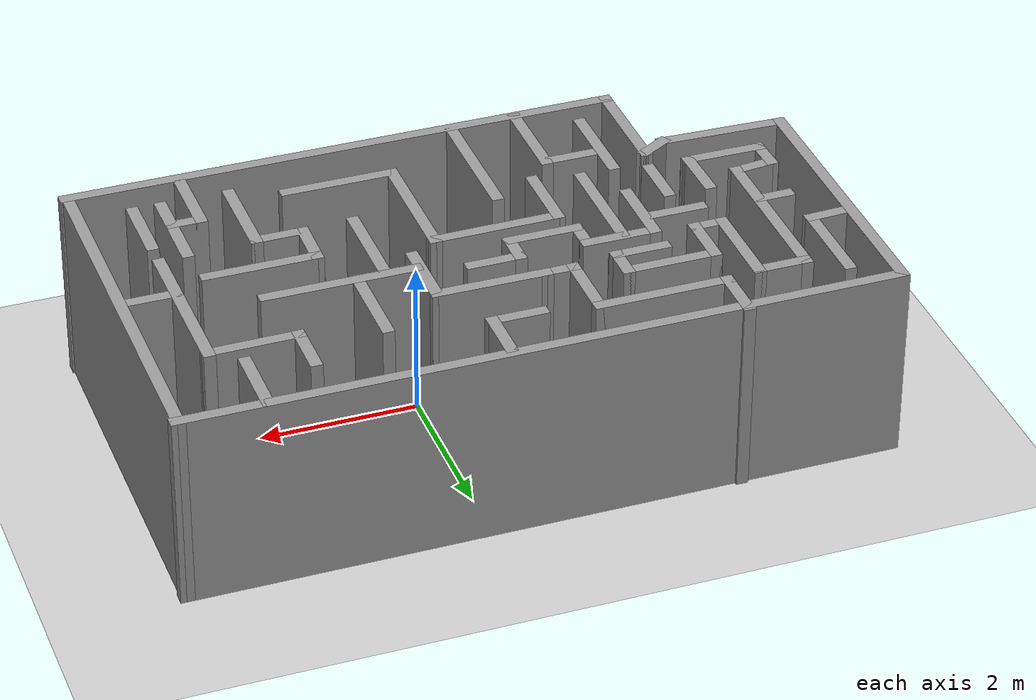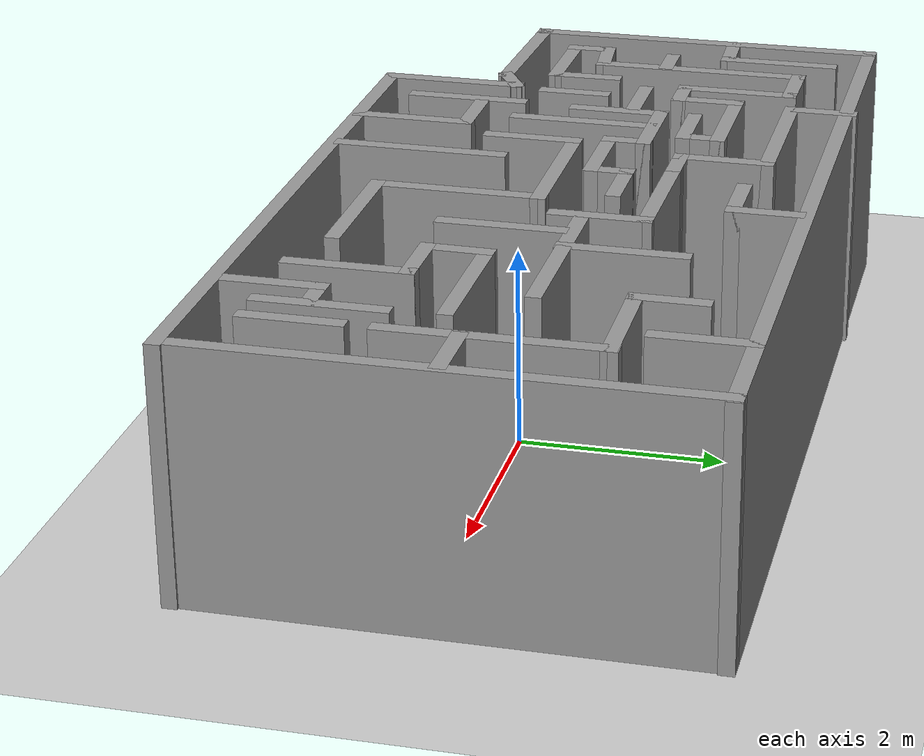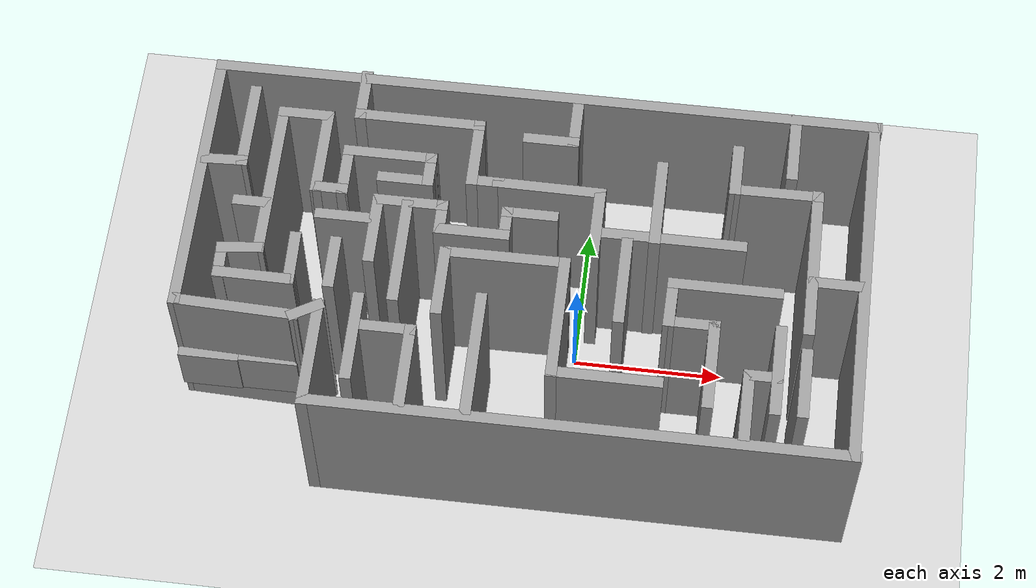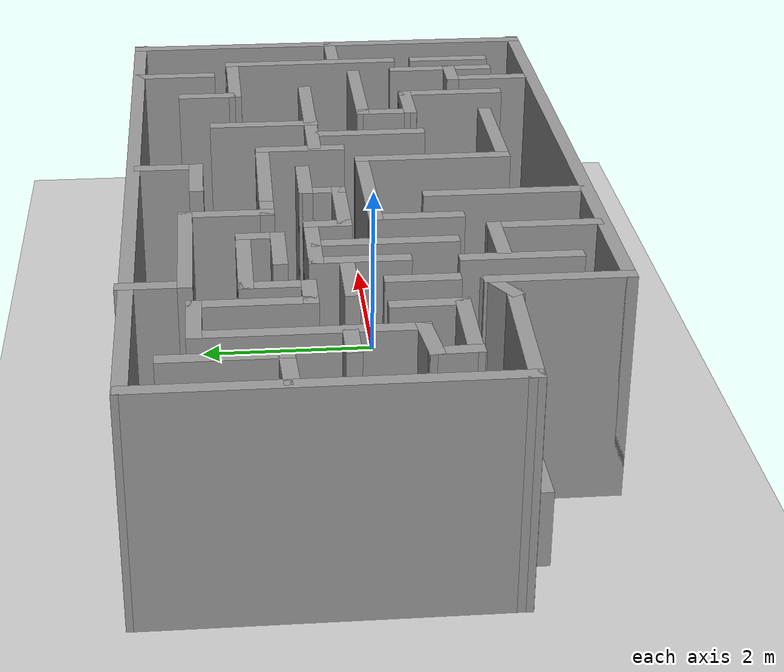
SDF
<sdf version="1.7">
 <world name="default">
  <light name="sun" type="directional">
   <pose>0 0 10 0 -0 0</pose>
   <diffuse>0.8 0.8 0.8 1</diffuse>
   <specular>0.2 0.2 0.2 1</specular>
   <attenuation>
    <range>1000</range>
    <constant>0.9</constant>
    <linear>0.01</linear>
    <quadratic>0.001</quadratic>
   </attenuation>
   <direction>-0.5 0.1 -0.9</direction>
   <spot><inner_angle>0</inner_angle><outer_angle>0</outer_angle><falloff>0</falloff></spot>
  </light>
  <model name="ground_plane">
   <static>1</static>
   <link name="link">
    <collision name="collision">
     <geometry><plane><normal>0 0 1</normal><size>100 100</size></plane></geometry>
     <surface>
      <contact><collide_bitmask>65535</collide_bitmask></contact>
      <friction><ode><mu>100</mu><mu2>50</mu2></ode></friction>
     </surface>
    </collision>
    <visual name="visual">
     <cast_shadows>0</cast_shadows>
     <geometry><plane><normal>0 0 1</normal><size>100 100</size></plane></geometry>
     <material>
      <script><uri>file://media/materials/scripts/gazebo.material</uri><name>Gazebo/Grey</name></script>
     </material>
    </visual>
   </link>
  </model>
  <gravity>0 0 -9.8</gravity>
  <magnetic_field>6e-06 2.3e-05 -4.2e-05</magnetic_field>
  <atmosphere type="adiabatic"/>
  <physics type="ode">
   <max_step_size>0.001</max_step_size>
   <real_time_factor>1</real_time_factor>
   <real_time_update_rate>1000</real_time_update_rate>
  </physics>
  <scene><ambient>0.4 0.4 0.4 1</ambient><background>0.7 0.7 0.7 1</background><shadows>1</shadows></scene>
  <spherical_coordinates>
   <surface_model>EARTH_WGS84</surface_model>
   <latitude_deg>0</latitude_deg>
   <longitude_deg>0</longitude_deg>
   <elevation>0</elevation>
   <heading_deg>0</heading_deg>
  </spherical_coordinates>
  <model name="luan">
   <pose>-0.698073 0.268581 0 0 -0 0</pose>
   <link name="Wall_0">
    <collision name="Wall_0_Collision">
     <geometry><box><size>3.75 0.15 2.5</size></box></geometry>
     <pose>0 0 1.25 0 -0 0</pose>
    </collision>
    <visual name="Wall_0_Visual">
     <pose>0 0 1.25 0 -0 0</pose>
     <geometry><box><size>3.75 0.15 2.5</size></box></geometry>
     <material>
      <script><uri>file://media/materials/scripts/gazebo.material</uri><name>Gazebo/Grey</name></script>
      <ambient>1 1 1 1</ambient>
     </material>
     <meta><layer>0</layer></meta>
    </visual>
    <pose>-4.40656 0.59 0 0 -0 1.5708</pose>
   </link>
   <link name="Wall_1">
    <collision name="Wall_1_Collision">
     <geometry><box><size>8.96566 0.15 2.5</size></box></geometry>
     <pose>0 0 1.25 0 -0 0</pose>
    </collision>
    <visual name="Wall_1_Visual">
     <pose>0 0 1.25 0 -0 0</pose>
     <geometry><box><size>8.96566 0.15 2.5</size></box></geometry>
     <material>
      <script><uri>file://media/materials/scripts/gazebo.material</uri><name>Gazebo/Grey</name></script>
      <ambient>1 1 1 1</ambient>
     </material>
     <meta><layer>0</layer></meta>
    </visual>
    <pose>0.001266 2.405 0 0 -0 0.001134</pose>
   </link>
   <link name="Wall_10">
    <collision name="Wall_10_Collision">
     <geometry><box><size>1.25 0.15 2.5</size></box></geometry>
     <pose>0 0 1.25 0 -0 0</pose>
    </collision>
    <visual name="Wall_10_Visual">
     <pose>0 0 1.25 0 -0 0</pose>
     <geometry><box><size>1.25 0.15 2.5</size></box></geometry>
     <material>
      <script><uri>file://media/materials/scripts/gazebo.material</uri><name>Gazebo/Grey</name></script>
      <ambient>1 1 1 1</ambient>
     </material>
     <meta><layer>0</layer></meta>
    </visual>
    <pose>-1.33656 -1.86 0 0 -0 -1.5708</pose>
   </link>
   <link name="Wall_100">
    <collision name="Wall_100_Collision">
     <geometry><box><size>0.75 0.15 2.5</size></box></geometry>
     <pose>0 0 1.25 0 -0 0</pose>
    </collision>
    <visual name="Wall_100_Visual">
     <pose>0 0 1.25 0 -0 0</pose>
     <geometry><box><size>0.75 0.15 2.5</size></box></geometry>
     <material>
      <script><uri>file://media/materials/scripts/gazebo.material</uri><name>Gazebo/Grey</name></script>
      <ambient>1 1 1 1</ambient>
     </material>
     <meta><layer>0</layer></meta>
    </visual>
    <pose>2.61344 1.54 0 0 -0 -1.5708</pose>
   </link>
   <link name="Wall_102">
    <collision name="Wall_102_Collision">
     <geometry><box><size>1 0.15 2.5</size></box></geometry>
     <pose>0 0 1.25 0 -0 0</pose>
    </collision>
    <visual name="Wall_102_Visual">
     <pose>0 0 1.25 0 -0 0</pose>
     <geometry><box><size>1 0.15 2.5</size></box></geometry>
     <material>
      <script><uri>file://media/materials/scripts/gazebo.material</uri><name>Gazebo/Grey</name></script>
      <ambient>1 1 1 1</ambient>
     </material>
     <meta><layer>0</layer></meta>
    </visual>
    <pose>3.34344 1.975 0 0 -0 1.5708</pose>
   </link>
   <link name="Wall_104">
    <collision name="Wall_104_Collision">
     <geometry><box><size>0.75 0.15 2.5</size></box></geometry>
     <pose>0 0 1.25 0 -0 0</pose>
    </collision>
    <visual name="Wall_104_Visual">
     <pose>0 0 1.25 0 -0 0</pose>
     <geometry><box><size>0.75 0.15 2.5</size></box></geometry>
     <material>
      <script><uri>file://media/materials/scripts/gazebo.material</uri><name>Gazebo/Grey</name></script>
      <ambient>1 1 1 1</ambient>
     </material>
     <meta><layer>0</layer></meta>
    </visual>
    <pose>0.433138 2.02104 0 0 -0 -1.5708</pose>
   </link>
   <link name="Wall_105">
    <collision name="Wall_105_Collision">
     <geometry><box><size>0.75 0.15 2.5</size></box></geometry>
     <pose>0 0 1.25 0 -0 0</pose>
    </collision>
    <visual name="Wall_105_Visual">
     <pose>0 0 1.25 0 -0 0</pose>
     <geometry><box><size>0.75 0.15 2.5</size></box></geometry>
     <material>
      <script><uri>file://media/materials/scripts/gazebo.material</uri><name>Gazebo/Grey</name></script>
      <ambient>1 1 1 1</ambient>
     </material>
     <meta><layer>0</layer></meta>
    </visual>
    <pose>0.133138 1.72104 0 0 -0 3.14159</pose>
   </link>
   <link name="Wall_107">
    <collision name="Wall_107_Collision">
     <geometry><box><size>1.25 0.15 2.5</size></box></geometry>
     <pose>0 0 1.25 0 -0 0</pose>
    </collision>
    <visual name="Wall_107_Visual">
     <pose>0 0 1.25 0 -0 0</pose>
     <geometry><box><size>1.25 0.15 2.5</size></box></geometry>
     <material>
      <script><uri>file://media/materials/scripts/gazebo.material</uri><name>Gazebo/Grey</name></script>
      <ambient>1 1 1 1</ambient>
     </material>
     <meta><layer>0</layer></meta>
    </visual>
    <pose>1.63593 0.928069 0 0 -0 1.5708</pose>
   </link>
   <link name="Wall_110">
    <collision name="Wall_110_Collision">
     <geometry><box><size>1.73479 0.15 2.5</size></box></geometry>
     <pose>0 0 1.25 0 -0 0</pose>
    </collision>
    <visual name="Wall_110_Visual">
     <pose>0 0 1.25 0 -0 0</pose>
     <geometry><box><size>1.73479 0.15 2.5</size></box></geometry>
     <material>
      <script><uri>file://media/materials/scripts/gazebo.material</uri><name>Gazebo/Grey</name></script>
      <ambient>1 1 1 1</ambient>
     </material>
     <meta><layer>0</layer></meta>
    </visual>
    <pose>0.51344 -0.902396 0 0 -0 -1.5708</pose>
   </link>
   <link name="Wall_116">
    <collision name="Wall_116_Collision">
     <geometry><box><size>1.75 0.15 2.5</size></box></geometry>
     <pose>0 0 1.25 0 -0 0</pose>
    </collision>
    <visual name="Wall_116_Visual">
     <pose>0 0 1.25 0 -0 0</pose>
     <geometry><box><size>1.75 0.15 2.5</size></box></geometry>
     <material>
      <script><uri>file://media/materials/scripts/gazebo.material</uri><name>Gazebo/Grey</name></script>
      <ambient>1 1 1 1</ambient>
     </material>
     <meta><layer>0</layer></meta>
    </visual>
    <pose>-0.495453 -1.54973 0 0 -0 1.5708</pose>
   </link>
   <link name="Wall_122">
    <collision name="Wall_122_Collision">
     <geometry><box><size>1.25 0.15 2.5</size></box></geometry>
     <pose>0 0 1.25 0 -0 0</pose>
    </collision>
    <visual name="Wall_122_Visual">
     <pose>0 0 1.25 0 -0 0</pose>
     <geometry><box><size>1.25 0.15 2.5</size></box></geometry>
     <material>
      <script><uri>file://media/materials/scripts/gazebo.material</uri><name>Gazebo/Grey</name></script>
      <ambient>1 1 1 1</ambient>
     </material>
     <meta><layer>0</layer></meta>
    </visual>
    <pose>1.28397 -0.278855 0 0 -0 1.5708</pose>
   </link>
   <link name="Wall_128">
    <collision name="Wall_128_Collision">
     <geometry><box><size>1.5 0.15 2.5</size></box></geometry>
     <pose>0 0 1.25 0 -0 0</pose>
    </collision>
    <visual name="Wall_128_Visual">
     <pose>0 0 1.25 0 -0 0</pose>
     <geometry><box><size>1.5 0.15 2.5</size></box></geometry>
     <material>
      <script><uri>file://media/materials/scripts/gazebo.material</uri><name>Gazebo/Grey</name></script>
      <ambient>1 1 1 1</ambient>
     </material>
     <meta><layer>0</layer></meta>
    </visual>
    <pose>1.18844 -1.69479 0 0 -0 0</pose>
   </link>
   <link name="Wall_134">
    <collision name="Wall_134_Collision">
     <geometry><box><size>1 0.15 2.5</size></box></geometry>
     <pose>0 0 1.25 0 -0 0</pose>
    </collision>
    <visual name="Wall_134_Visual">
     <pose>0 0 1.25 0 -0 0</pose>
     <geometry><box><size>1 0.15 2.5</size></box></geometry>
     <material>
      <script><uri>file://media/materials/scripts/gazebo.material</uri><name>Gazebo/Grey</name></script>
      <ambient>1 1 1 1</ambient>
     </material>
     <meta><layer>0</layer></meta>
    </visual>
    <pose>-0.74156 0.21 0 0 -0 0</pose>
   </link>
   <link name="Wall_135">
    <collision name="Wall_135_Collision">
     <geometry><box><size>0.5 0.15 2.5</size></box></geometry>
     <pose>0 0 1.25 0 -0 0</pose>
    </collision>
    <visual name="Wall_135_Visual">
     <pose>0 0 1.25 0 -0 0</pose>
     <geometry><box><size>0.5 0.15 2.5</size></box></geometry>
     <material>
      <script><uri>file://media/materials/scripts/gazebo.material</uri><name>Gazebo/Grey</name></script>
      <ambient>1 1 1 1</ambient>
     </material>
     <meta><layer>0</layer></meta>
    </visual>
    <pose>-0.31656 0.385 0 0 -0 1.5708</pose>
   </link>
   <link name="Wall_136">
    <collision name="Wall_136_Collision">
     <geometry><box><size>0.75 0.15 2.5</size></box></geometry>
     <pose>0 0 1.25 0 -0 0</pose>
    </collision>
    <visual name="Wall_136_Visual">
     <pose>0 0 1.25 0 -0 0</pose>
     <geometry><box><size>0.75 0.15 2.5</size></box></geometry>
     <material>
      <script><uri>file://media/materials/scripts/gazebo.material</uri><name>Gazebo/Grey</name></script>
      <ambient>1 1 1 1</ambient>
     </material>
     <meta><layer>0</layer></meta>
    </visual>
    <pose>-0.01656 0.56 0 0 -0 0</pose>
   </link>
   <link name="Wall_138">
    <collision name="Wall_138_Collision">
     <geometry><box><size>1 0.15 2.5</size></box></geometry>
     <pose>0 0 1.25 0 -0 0</pose>
    </collision>
    <visual name="Wall_138_Visual">
     <pose>0 0 1.25 0 -0 0</pose>
     <geometry><box><size>1 0.15 2.5</size></box></geometry>
     <material>
      <script><uri>file://media/materials/scripts/gazebo.material</uri><name>Gazebo/Grey</name></script>
      <ambient>1 1 1 1</ambient>
     </material>
     <meta><layer>0</layer></meta>
    </visual>
    <pose>0.86344 0.555 0 0 -0 -1.5708</pose>
   </link>
   <link name="Wall_14">
    <collision name="Wall_14_Collision">
     <geometry><box><size>1 0.15 2.5</size></box></geometry>
     <pose>0 0 1.25 0 -0 0</pose>
    </collision>
    <visual name="Wall_14_Visual">
     <pose>0 0 1.25 0 -0 0</pose>
     <geometry><box><size>1 0.15 2.5</size></box></geometry>
     <material>
      <script><uri>file://media/materials/scripts/gazebo.material</uri><name>Gazebo/Grey</name></script>
      <ambient>1 1 1 1</ambient>
     </material>
     <meta><layer>0</layer></meta>
    </visual>
    <pose>-1.04656 -0.545 0 0 -0 1.5708</pose>
   </link>
   <link name="Wall_15">
    <collision name="Wall_15_Collision">
     <geometry><box><size>1.71003 0.15 2.5</size></box></geometry>
     <pose>0 0 1.25 0 -0 0</pose>
    </collision>
    <visual name="Wall_15_Visual">
     <pose>0 0 1.25 0 -0 0</pose>
     <geometry><box><size>1.71003 0.15 2.5</size></box></geometry>
     <material>
      <script><uri>file://media/materials/scripts/gazebo.material</uri><name>Gazebo/Grey</name></script>
      <ambient>1 1 1 1</ambient>
     </material>
     <meta><layer>0</layer></meta>
    </visual>
    <pose>-0.26656 -0.115 0 0 -0 0.00641</pose>
   </link>
   <link name="Wall_18">
    <collision name="Wall_18_Collision">
     <geometry><box><size>1.50033 0.15 2.5</size></box></geometry>
     <pose>0 0 1.25 0 -0 0</pose>
    </collision>
    <visual name="Wall_18_Visual">
     <pose>0 0 1.25 0 -0 0</pose>
     <geometry><box><size>1.50033 0.15 2.5</size></box></geometry>
     <material>
      <script><uri>file://media/materials/scripts/gazebo.material</uri><name>Gazebo/Grey</name></script>
      <ambient>1 1 1 1</ambient>
     </material>
     <meta><layer>0</layer></meta>
    </visual>
    <pose>0.18844 0.985 0 0 -0 3.13418</pose>
   </link>
   <link name="Wall_19">
    <collision name="Wall_19_Collision">
     <geometry><box><size>0.5 0.15 2.5</size></box></geometry>
     <pose>0 0 1.25 0 -0 0</pose>
    </collision>
    <visual name="Wall_19_Visual">
     <pose>0 0 1.25 0 -0 0</pose>
     <geometry><box><size>0.5 0.15 2.5</size></box></geometry>
     <material>
      <script><uri>file://media/materials/scripts/gazebo.material</uri><name>Gazebo/Grey</name></script>
      <ambient>1 1 1 1</ambient>
     </material>
     <meta><layer>0</layer></meta>
    </visual>
    <pose>-0.66156 0.99 0 0 -0 3.14159</pose>
   </link>
   <link name="Wall_2">
    <collision name="Wall_2_Collision">
     <geometry><box><size>5 0.15 2.5</size></box></geometry>
     <pose>0 0 1.25 0 -0 0</pose>
    </collision>
    <visual name="Wall_2_Visual">
     <pose>0 0 1.25 0 -0 0</pose>
     <geometry><box><size>5 0.15 2.5</size></box></geometry>
     <material>
      <script><uri>file://media/materials/scripts/gazebo.material</uri><name>Gazebo/Grey</name></script>
      <ambient>1 1 1 1</ambient>
     </material>
     <meta><layer>0</layer></meta>
    </visual>
    <pose>4.38596 -0.015 0 0 -0 -1.5708</pose>
   </link>
   <link name="Wall_20">
    <collision name="Wall_20_Collision">
     <geometry><box><size>1 0.15 2.5</size></box></geometry>
     <pose>0 0 1.25 0 -0 0</pose>
    </collision>
    <visual name="Wall_20_Visual">
     <pose>0 0 1.25 0 -0 0</pose>
     <geometry><box><size>1 0.15 2.5</size></box></geometry>
     <material>
      <script><uri>file://media/materials/scripts/gazebo.material</uri><name>Gazebo/Grey</name></script>
      <ambient>1 1 1 1</ambient>
     </material>
     <meta><layer>0</layer></meta>
    </visual>
    <pose>-0.83656 1.415 0 0 -0 1.5708</pose>
   </link>
   <link name="Wall_21">
    <collision name="Wall_21_Collision">
     <geometry><box><size>1.75 0.15 2.5</size></box></geometry>
     <pose>0 0 1.25 0 -0 0</pose>
    </collision>
    <visual name="Wall_21_Visual">
     <pose>0 0 1.25 0 -0 0</pose>
     <geometry><box><size>1.75 0.15 2.5</size></box></geometry>
     <material>
      <script><uri>file://media/materials/scripts/gazebo.material</uri><name>Gazebo/Grey</name></script>
      <ambient>1 1 1 1</ambient>
     </material>
     <meta><layer>0</layer></meta>
    </visual>
    <pose>-1.63656 1.84 0 0 -0 3.14159</pose>
   </link>
   <link name="Wall_23">
    <collision name="Wall_23_Collision">
     <geometry><box><size>1.25 0.15 2.5</size></box></geometry>
     <pose>0 0 1.25 0 -0 0</pose>
    </collision>
    <visual name="Wall_23_Visual">
     <pose>0 0 1.25 0 -0 0</pose>
     <geometry><box><size>1.25 0.15 2.5</size></box></geometry>
     <material>
      <script><uri>file://media/materials/scripts/gazebo.material</uri><name>Gazebo/Grey</name></script>
      <ambient>1 1 1 1</ambient>
     </material>
     <meta><layer>0</layer></meta>
    </visual>
    <pose>-2.06404 -1.4747 0 0 -0 -1.5708</pose>
   </link>
   <link name="Wall_26">
    <collision name="Wall_26_Collision">
     <geometry><box><size>1.02 0.15 2.5</size></box></geometry>
     <pose>0 0 1.25 0 -0 0</pose>
    </collision>
    <visual name="Wall_26_Visual">
     <pose>0 0 1.25 0 -0 0</pose>
     <geometry><box><size>1.02 0.15 2.5</size></box></geometry>
     <material>
      <script><uri>file://media/materials/scripts/gazebo.material</uri><name>Gazebo/Grey</name></script>
      <ambient>1 1 1 1</ambient>
     </material>
     <meta><layer>0</layer></meta>
    </visual>
    <pose>-2.01656 0.125 0 0 -0 1.5708</pose>
   </link>
   <link name="Wall_27">
    <collision name="Wall_27_Collision">
     <geometry><box><size>1 0.15 2.5</size></box></geometry>
     <pose>0 0 1.25 0 -0 0</pose>
    </collision>
    <visual name="Wall_27_Visual">
     <pose>0 0 1.25 0 -0 0</pose>
     <geometry><box><size>1 0.15 2.5</size></box></geometry>
     <material>
      <script><uri>file://media/materials/scripts/gazebo.material</uri><name>Gazebo/Grey</name></script>
      <ambient>1 1 1 1</ambient>
     </material>
     <meta><layer>0</layer></meta>
    </visual>
    <pose>-1.59156 0.56 0 0 -0 0</pose>
   </link>
   <link name="Wall_28">
    <collision name="Wall_28_Collision">
     <geometry><box><size>0.5 0.15 2.5</size></box></geometry>
     <pose>0 0 1.25 0 -0 0</pose>
    </collision>
    <visual name="Wall_28_Visual">
     <pose>0 0 1.25 0 -0 0</pose>
     <geometry><box><size>0.5 0.15 2.5</size></box></geometry>
     <material>
      <script><uri>file://media/materials/scripts/gazebo.material</uri><name>Gazebo/Grey</name></script>
      <ambient>1 1 1 1</ambient>
     </material>
     <meta><layer>0</layer></meta>
    </visual>
    <pose>-1.16656 0.385 0 0 -0 -1.5708</pose>
   </link>
   <link name="Wall_3">
    <collision name="Wall_3_Collision">
     <geometry><box><size>7.11565 0.15 2.5</size></box></geometry>
     <pose>0 0 1.25 0 -0 0</pose>
    </collision>
    <visual name="Wall_3_Visual">
     <pose>0 0 1.25 0 -0 0</pose>
     <geometry><box><size>7.11565 0.15 2.5</size></box></geometry>
     <material>
      <script><uri>file://media/materials/scripts/gazebo.material</uri><name>Gazebo/Grey</name></script>
      <ambient>1 1 1 1</ambient>
     </material>
     <meta><layer>0</layer></meta>
    </visual>
    <pose>0.926266 -2.44 0 0 -0 3.14159</pose>
   </link>
   <link name="Wall_33">
    <collision name="Wall_33_Collision">
     <geometry><box><size>2.25 0.15 2.5</size></box></geometry>
     <pose>0 0 1.25 0 -0 0</pose>
    </collision>
    <visual name="Wall_33_Visual">
     <pose>0 0 1.25 0 -0 0</pose>
     <geometry><box><size>2.25 0.15 2.5</size></box></geometry>
     <material>
      <script><uri>file://media/materials/scripts/gazebo.material</uri><name>Gazebo/Grey</name></script>
      <ambient>1 1 1 1</ambient>
     </material>
     <meta><layer>0</layer></meta>
    </visual>
    <pose>-3.45656 0.71 0 0 -0 1.5708</pose>
   </link>
   <link name="Wall_34">
    <collision name="Wall_34_Collision">
     <geometry><box><size>0.75 0.15 2.5</size></box></geometry>
     <pose>0 0 1.25 0 -0 0</pose>
    </collision>
    <visual name="Wall_34_Visual">
     <pose>0 0 1.25 0 -0 0</pose>
     <geometry><box><size>0.75 0.15 2.5</size></box></geometry>
     <material>
      <script><uri>file://media/materials/scripts/gazebo.material</uri><name>Gazebo/Grey</name></script>
      <ambient>1 1 1 1</ambient>
     </material>
     <meta><layer>0</layer></meta>
    </visual>
    <pose>-3.15656 1.76 0 0 -0 0</pose>
   </link>
   <link name="Wall_35">
    <collision name="Wall_35_Collision">
     <geometry><box><size>1.25 0.15 2.5</size></box></geometry>
     <pose>0 0 1.25 0 -0 0</pose>
    </collision>
    <visual name="Wall_35_Visual">
     <pose>0 0 1.25 0 -0 0</pose>
     <geometry><box><size>1.25 0.15 2.5</size></box></geometry>
     <material>
      <script><uri>file://media/materials/scripts/gazebo.material</uri><name>Gazebo/Grey</name></script>
      <ambient>1 1 1 1</ambient>
     </material>
     <meta><layer>0</layer></meta>
    </visual>
    <pose>-2.85656 1.21 0 0 -0 -1.5708</pose>
   </link>
   <link name="Wall_36">
    <collision name="Wall_36_Collision">
     <geometry><box><size>0.5 0.15 2.5</size></box></geometry>
     <pose>0 0 1.25 0 -0 0</pose>
    </collision>
    <visual name="Wall_36_Visual">
     <pose>0 0 1.25 0 -0 0</pose>
     <geometry><box><size>0.5 0.15 2.5</size></box></geometry>
     <material>
      <script><uri>file://media/materials/scripts/gazebo.material</uri><name>Gazebo/Grey</name></script>
      <ambient>1 1 1 1</ambient>
     </material>
     <meta><layer>0</layer></meta>
    </visual>
    <pose>-2.68156 0.66 0 0 -0 0</pose>
   </link>
   <link name="Wall_37">
    <collision name="Wall_37_Collision">
     <geometry><box><size>0.75 0.15 2.5</size></box></geometry>
     <pose>0 0 1.25 0 -0 0</pose>
    </collision>
    <visual name="Wall_37_Visual">
     <pose>0 0 1.25 0 -0 0</pose>
     <geometry><box><size>0.75 0.15 2.5</size></box></geometry>
     <material>
      <script><uri>file://media/materials/scripts/gazebo.material</uri><name>Gazebo/Grey</name></script>
      <ambient>1 1 1 1</ambient>
     </material>
     <meta><layer>0</layer></meta>
    </visual>
    <pose>-2.50656 0.96 0 0 -0 1.5708</pose>
   </link>
   <link name="Wall_38">
    <collision name="Wall_38_Collision">
     <geometry><box><size>1.25 0.15 2.5</size></box></geometry>
     <pose>0 0 1.25 0 -0 0</pose>
    </collision>
    <visual name="Wall_38_Visual">
     <pose>0 0 1.25 0 -0 0</pose>
     <geometry><box><size>1.25 0.15 2.5</size></box></geometry>
     <material>
      <script><uri>file://media/materials/scripts/gazebo.material</uri><name>Gazebo/Grey</name></script>
      <ambient>1 1 1 1</ambient>
     </material>
     <meta><layer>0</layer></meta>
    </visual>
    <pose>-1.95656 1.26 0 0 -0 0</pose>
   </link>
   <link name="Wall_39">
    <collision name="Wall_39_Collision">
     <geometry><box><size>0.5 0.15 2.5</size></box></geometry>
     <pose>0 0 1.25 0 -0 0</pose>
    </collision>
    <visual name="Wall_39_Visual">
     <pose>0 0 1.25 0 -0 0</pose>
     <geometry><box><size>0.5 0.15 2.5</size></box></geometry>
     <material>
      <script><uri>file://media/materials/scripts/gazebo.material</uri><name>Gazebo/Grey</name></script>
      <ambient>1 1 1 1</ambient>
     </material>
     <meta><layer>0</layer></meta>
    </visual>
    <pose>-1.40656 1.085 0 0 -0 -1.5708</pose>
   </link>
   <link name="Wall_4">
    <collision name="Wall_4_Collision">
     <geometry><box><size>1.5 0.15 2.5</size></box></geometry>
     <pose>0 0 1.25 0 -0 0</pose>
    </collision>
    <visual name="Wall_4_Visual">
     <pose>0 0 1.25 0 -0 0</pose>
     <geometry><box><size>1.5 0.15 2.5</size></box></geometry>
     <material>
      <script><uri>file://media/materials/scripts/gazebo.material</uri><name>Gazebo/Grey</name></script>
      <ambient>1 1 1 1</ambient>
     </material>
     <meta><layer>0</layer></meta>
    </visual>
    <pose>-2.55656 -1.765 0 0 -0 1.5708</pose>
   </link>
   <link name="Wall_40">
    <collision name="Wall_40_Collision">
     <geometry><box><size>0.75 0.15 2.5</size></box></geometry>
     <pose>0 0 1.25 0 -0 0</pose>
    </collision>
    <visual name="Wall_40_Visual">
     <pose>0 0 1.25 0 -0 0</pose>
     <geometry><box><size>0.75 0.15 2.5</size></box></geometry>
     <material>
      <script><uri>file://media/materials/scripts/gazebo.material</uri><name>Gazebo/Grey</name></script>
      <ambient>1 1 1 1</ambient>
     </material>
     <meta><layer>0</layer></meta>
    </visual>
    <pose>-1.70656 0.91 0 0 -0 3.14159</pose>
   </link>
   <link name="Wall_48">
    <collision name="Wall_48_Collision">
     <geometry><box><size>0.75 0.15 2.5</size></box></geometry>
     <pose>0 0 1.25 0 -0 0</pose>
    </collision>
    <visual name="Wall_48_Visual">
     <pose>0 0 1.25 0 -0 0</pose>
     <geometry><box><size>0.75 0.15 2.5</size></box></geometry>
     <material>
      <script><uri>file://media/materials/scripts/gazebo.material</uri><name>Gazebo/Grey</name></script>
      <ambient>1 1 1 1</ambient>
     </material>
     <meta><layer>0</layer></meta>
    </visual>
    <pose>-1.63656 -1.31 0 0 -0 3.14159</pose>
   </link>
   <link name="Wall_53">
    <collision name="Wall_53_Collision">
     <geometry><box><size>0.5 0.15 2.5</size></box></geometry>
     <pose>0 0 1.25 0 -0 0</pose>
    </collision>
    <visual name="Wall_53_Visual">
     <pose>0 0 1.25 0 -0 0</pose>
     <geometry><box><size>0.5 0.15 2.5</size></box></geometry>
     <material>
      <script><uri>file://media/materials/scripts/gazebo.material</uri><name>Gazebo/Grey</name></script>
      <ambient>1 1 1 1</ambient>
     </material>
     <meta><layer>0</layer></meta>
    </visual>
    <pose>-2.70811 -1.1775 0 0 -0 -2.61799</pose>
   </link>
   <link name="Wall_54">
    <collision name="Wall_54_Collision">
     <geometry><box><size>1.69787 0.15 2.5</size></box></geometry>
     <pose>0 0 1.25 0 -0 0</pose>
    </collision>
    <visual name="Wall_54_Visual">
     <pose>0 0 1.25 0 -0 0</pose>
     <geometry><box><size>1.69787 0.15 2.5</size></box></geometry>
     <material>
      <script><uri>file://media/materials/scripts/gazebo.material</uri><name>Gazebo/Grey</name></script>
      <ambient>1 1 1 1</ambient>
     </material>
     <meta><layer>0</layer></meta>
    </visual>
    <pose>-3.63312 -1.2375 0 0 -0 3.10605</pose>
   </link>
   <link name="Wall_57">
    <collision name="Wall_57_Collision">
     <geometry><box><size>0.622652 0.15 2.5</size></box></geometry>
     <pose>0 0 1.25 0 -0 0</pose>
    </collision>
    <visual name="Wall_57_Visual">
     <pose>0 0 1.25 0 -0 0</pose>
     <geometry><box><size>0.622652 0.15 2.5</size></box></geometry>
     <material>
      <script><uri>file://media/materials/scripts/gazebo.material</uri><name>Gazebo/Grey</name></script>
      <ambient>1 1 1 1</ambient>
     </material>
     <meta><layer>0</layer></meta>
    </visual>
    <pose>-3.69156 -0.365 0 0 -0 0.105984</pose>
   </link>
   <link name="Wall_59">
    <collision name="Wall_59_Collision">
     <geometry><box><size>0.520135 0.15 2.5</size></box></geometry>
     <pose>0 0 1.25 0 -0 0</pose>
    </collision>
    <visual name="Wall_59_Visual">
     <pose>0 0 1.25 0 -0 0</pose>
     <geometry><box><size>0.520135 0.15 2.5</size></box></geometry>
     <material>
      <script><uri>file://media/materials/scripts/gazebo.material</uri><name>Gazebo/Grey</name></script>
      <ambient>1 1 1 1</ambient>
     </material>
     <meta><layer>0</layer></meta>
    </visual>
    <pose>-3.92156 -0.575 0 0 -0 -1.54378</pose>
   </link>
   <link name="Wall_6">
    <collision name="Wall_6_Collision">
     <geometry><box><size>0.15 0.15 2.5</size></box></geometry>
     <pose>0 0 1.25 0 -0 0</pose>
    </collision>
    <visual name="Wall_6_Visual">
     <pose>0 0 1.25 0 -0 0</pose>
     <geometry><box><size>0.15 0.15 2.5</size></box></geometry>
     <material>
      <script><uri>file://media/materials/scripts/gazebo.material</uri><name>Gazebo/Grey</name></script>
      <ambient>1 1 1 1</ambient>
     </material>
     <meta><layer>0</layer></meta>
    </visual>
    <pose>-4.40656 -1.2 0 0 -0 0</pose>
   </link>
   <link name="Wall_60">
    <collision name="Wall_60_Collision">
     <geometry><box><size>1.07005 0.15 2.5</size></box></geometry>
     <pose>0 0 1.25 0 -0 0</pose>
    </collision>
    <visual name="Wall_60_Visual">
     <pose>0 0 1.25 0 -0 0</pose>
     <geometry><box><size>1.07005 0.15 2.5</size></box></geometry>
     <material>
      <script><uri>file://media/materials/scripts/gazebo.material</uri><name>Gazebo/Grey</name></script>
      <ambient>1 1 1 1</ambient>
     </material>
     <meta><layer>0</layer></meta>
    </visual>
    <pose>-3.45656 -0.755 0 0 -0 -0.010869</pose>
   </link>
   <link name="Wall_61">
    <collision name="Wall_61_Collision">
     <geometry><box><size>0.770081 0.15 2.5</size></box></geometry>
     <pose>0 0 1.25 0 -0 0</pose>
    </collision>
    <visual name="Wall_61_Visual">
     <pose>0 0 1.25 0 -0 0</pose>
     <geometry><box><size>0.770081 0.15 2.5</size></box></geometry>
     <material>
      <script><uri>file://media/materials/scripts/gazebo.material</uri><name>Gazebo/Grey</name></script>
      <ambient>1 1 1 1</ambient>
     </material>
     <meta><layer>0</layer></meta>
    </visual>
    <pose>-3.00156 -0.44 0 0 -0 1.58692</pose>
   </link>
   <link name="Wall_63">
    <collision name="Wall_63_Collision">
     <geometry><box><size>0.75 0.15 2.5</size></box></geometry>
     <pose>0 0 1.25 0 -0 0</pose>
    </collision>
    <visual name="Wall_63_Visual">
     <pose>0 0 1.25 0 -0 0</pose>
     <geometry><box><size>0.75 0.15 2.5</size></box></geometry>
     <material>
      <script><uri>file://media/materials/scripts/gazebo.material</uri><name>Gazebo/Grey</name></script>
      <ambient>1 1 1 1</ambient>
     </material>
     <meta><layer>0</layer></meta>
    </visual>
    <pose>-2.43656 0.26 0 0 -0 0</pose>
   </link>
   <link name="Wall_65">
    <collision name="Wall_65_Collision">
     <geometry><box><size>0.75 0.15 2.5</size></box></geometry>
     <pose>0 0 1.25 0 -0 0</pose>
    </collision>
    <visual name="Wall_65_Visual">
     <pose>0 0 1.25 0 -0 0</pose>
     <geometry><box><size>0.75 0.15 2.5</size></box></geometry>
     <material>
      <script><uri>file://media/materials/scripts/gazebo.material</uri><name>Gazebo/Grey</name></script>
      <ambient>1 1 1 1</ambient>
     </material>
     <meta><layer>0</layer></meta>
    </visual>
    <pose>-2.47656 -0.44 0 0 -0 -1.5708</pose>
   </link>
   <link name="Wall_67">
    <collision name="Wall_67_Collision">
     <geometry><box><size>0.620425 0.15 2.5</size></box></geometry>
     <pose>0 0 1.25 0 -0 0</pose>
    </collision>
    <visual name="Wall_67_Visual">
     <pose>0 0 1.25 0 -0 0</pose>
     <geometry><box><size>0.620425 0.15 2.5</size></box></geometry>
     <material>
      <script><uri>file://media/materials/scripts/gazebo.material</uri><name>Gazebo/Grey</name></script>
      <ambient>1 1 1 1</ambient>
     </material>
     <meta><layer>0</layer></meta>
    </visual>
    <pose>-4.12156 0.93 0 0 -0 -3.09906</pose>
   </link>
   <link name="Wall_69">
    <collision name="Wall_69_Collision">
     <geometry><box><size>1.25 0.15 2.5</size></box></geometry>
     <pose>0 0 1.25 0 -0 0</pose>
    </collision>
    <visual name="Wall_69_Visual">
     <pose>0 0 1.25 0 -0 0</pose>
     <geometry><box><size>1.25 0.15 2.5</size></box></geometry>
     <material>
      <script><uri>file://media/materials/scripts/gazebo.material</uri><name>Gazebo/Grey</name></script>
      <ambient>1 1 1 1</ambient>
     </material>
     <meta><layer>0</layer></meta>
    </visual>
    <pose>-3.88656 1.49 0 0 -0 1.5708</pose>
   </link>
   <link name="Wall_72">
    <collision name="Wall_72_Collision">
     <geometry><box><size>0.5 0.15 2.5</size></box></geometry>
     <pose>0 0 1.25 0 -0 0</pose>
    </collision>
    <visual name="Wall_72_Visual">
     <pose>0 0 1.25 0 -0 0</pose>
     <geometry><box><size>0.5 0.15 2.5</size></box></geometry>
     <material>
      <script><uri>file://media/materials/scripts/gazebo.material</uri><name>Gazebo/Grey</name></script>
      <ambient>1 1 1 1</ambient>
     </material>
     <meta><layer>0</layer></meta>
    </visual>
    <pose>-3.66156 0.34 0 0 -0 3.14159</pose>
   </link>
   <link name="Wall_75">
    <collision name="Wall_75_Collision">
     <geometry><box><size>1.5 0.15 2.5</size></box></geometry>
     <pose>0 0 1.25 0 -0 0</pose>
    </collision>
    <visual name="Wall_75_Visual">
     <pose>0 0 1.25 0 -0 0</pose>
     <geometry><box><size>1.5 0.15 2.5</size></box></geometry>
     <material>
      <script><uri>file://media/materials/scripts/gazebo.material</uri><name>Gazebo/Grey</name></script>
      <ambient>1 1 1 1</ambient>
     </material>
     <meta><layer>0</layer></meta>
    </visual>
    <pose>-1.62656 -0.165 0 0 -0 -1.5708</pose>
   </link>
   <link name="Wall_77">
    <collision name="Wall_77_Collision">
     <geometry><box><size>0.75 0.15 2.5</size></box></geometry>
     <pose>0 0 1.25 0 -0 0</pose>
    </collision>
    <visual name="Wall_77_Visual">
     <pose>0 0 1.25 0 -0 0</pose>
     <geometry><box><size>0.75 0.15 2.5</size></box></geometry>
     <material>
      <script><uri>file://media/materials/scripts/gazebo.material</uri><name>Gazebo/Grey</name></script>
      <ambient>1 1 1 1</ambient>
     </material>
     <meta><layer>0</layer></meta>
    </visual>
    <pose>-2.43656 2.14 0 0 -0 1.5708</pose>
   </link>
   <link name="Wall_79">
    <collision name="Wall_79_Collision">
     <geometry><box><size>2 0.15 2.5</size></box></geometry>
     <pose>0 0 1.25 0 -0 0</pose>
    </collision>
    <visual name="Wall_79_Visual">
     <pose>0 0 1.25 0 -0 0</pose>
     <geometry><box><size>2 0.15 2.5</size></box></geometry>
     <material>
      <script><uri>file://media/materials/scripts/gazebo.material</uri><name>Gazebo/Grey</name></script>
      <ambient>1 1 1 1</ambient>
     </material>
     <meta><layer>0</layer></meta>
    </visual>
    <pose>1.83844 0.39 0 0 -0 0</pose>
   </link>
   <link name="Wall_81">
    <collision name="Wall_81_Collision">
     <geometry><box><size>1.24005 0.15 2.5</size></box></geometry>
     <pose>0 0 1.25 0 -0 0</pose>
    </collision>
    <visual name="Wall_81_Visual">
     <pose>0 0 1.25 0 -0 0</pose>
     <geometry><box><size>1.24005 0.15 2.5</size></box></geometry>
     <material>
      <script><uri>file://media/materials/scripts/gazebo.material</uri><name>Gazebo/Grey</name></script>
      <ambient>1 1 1 1</ambient>
     </material>
     <meta><layer>0</layer></meta>
    </visual>
    <pose>3.15844 1.245 0 0 -0 0.009174</pose>
   </link>
   <link name="Wall_82">
    <collision name="Wall_82_Collision">
     <geometry><box><size>2.14003 0.15 2.5</size></box></geometry>
     <pose>0 0 1.25 0 -0 0</pose>
    </collision>
    <visual name="Wall_82_Visual">
     <pose>0 0 1.25 0 -0 0</pose>
     <geometry><box><size>2.14003 0.15 2.5</size></box></geometry>
     <material>
      <script><uri>file://media/materials/scripts/gazebo.material</uri><name>Gazebo/Grey</name></script>
      <ambient>1 1 1 1</ambient>
     </material>
     <meta><layer>0</layer></meta>
    </visual>
    <pose>3.70844 0.265 0 0 -0 -1.56577</pose>
   </link>
   <link name="Wall_84">
    <collision name="Wall_84_Collision">
     <geometry><box><size>0.98 0.15 2.5</size></box></geometry>
     <pose>0 0 1.25 0 -0 0</pose>
    </collision>
    <visual name="Wall_84_Visual">
     <pose>0 0 1.25 0 -0 0</pose>
     <geometry><box><size>0.98 0.15 2.5</size></box></geometry>
     <material>
      <script><uri>file://media/materials/scripts/gazebo.material</uri><name>Gazebo/Grey</name></script>
      <ambient>1 1 1 1</ambient>
     </material>
     <meta><layer>0</layer></meta>
    </visual>
    <pose>3.71344 -1.495 0 0 -0 -1.5708</pose>
   </link>
   <link name="Wall_86">
    <collision name="Wall_86_Collision">
     <geometry><box><size>1.27 0.15 2.5</size></box></geometry>
     <pose>0 0 1.25 0 -0 0</pose>
    </collision>
    <visual name="Wall_86_Visual">
     <pose>0 0 1.25 0 -0 0</pose>
     <geometry><box><size>1.27 0.15 2.5</size></box></geometry>
     <material>
      <script><uri>file://media/materials/scripts/gazebo.material</uri><name>Gazebo/Grey</name></script>
      <ambient>1 1 1 1</ambient>
     </material>
     <meta><layer>0</layer></meta>
    </visual>
    <pose>3.36344 -1.35 0 0 -0 1.5708</pose>
   </link>
   <link name="Wall_89">
    <collision name="Wall_89_Collision">
     <geometry><box><size>1.5 0.15 2.5</size></box></geometry>
     <pose>0 0 1.25 0 -0 0</pose>
    </collision>
    <visual name="Wall_89_Visual">
     <pose>0 0 1.25 0 -0 0</pose>
     <geometry><box><size>1.5 0.15 2.5</size></box></geometry>
     <material>
      <script><uri>file://media/materials/scripts/gazebo.material</uri><name>Gazebo/Grey</name></script>
      <ambient>1 1 1 1</ambient>
     </material>
     <meta><layer>0</layer></meta>
    </visual>
    <pose>2.60844 -0.25 0 0 -0 3.14159</pose>
   </link>
   <link name="Wall_90">
    <collision name="Wall_90_Collision">
     <geometry><box><size>0.710089 0.15 2.5</size></box></geometry>
     <pose>0 0 1.25 0 -0 0</pose>
    </collision>
    <visual name="Wall_90_Visual">
     <pose>0 0 1.25 0 -0 0</pose>
     <geometry><box><size>0.710089 0.15 2.5</size></box></geometry>
     <material>
      <script><uri>file://media/materials/scripts/gazebo.material</uri><name>Gazebo/Grey</name></script>
      <ambient>1 1 1 1</ambient>
     </material>
     <meta><layer>0</layer></meta>
    </visual>
    <pose>1.92844 -0.53 0 0 -0 -1.58865</pose>
   </link>
   <link name="Wall_91">
    <collision name="Wall_91_Collision">
     <geometry><box><size>0.74 0.15 2.5</size></box></geometry>
     <pose>0 0 1.25 0 -0 0</pose>
    </collision>
    <visual name="Wall_91_Visual">
     <pose>0 0 1.25 0 -0 0</pose>
     <geometry><box><size>0.74 0.15 2.5</size></box></geometry>
     <material>
      <script><uri>file://media/materials/scripts/gazebo.material</uri><name>Gazebo/Grey</name></script>
      <ambient>1 1 1 1</ambient>
     </material>
     <meta><layer>0</layer></meta>
    </visual>
    <pose>2.21844 -0.81 0 0 -0 0</pose>
   </link>
   <link name="Wall_92">
    <collision name="Wall_92_Collision">
     <geometry><box><size>1.25 0.15 2.5</size></box></geometry>
     <pose>0 0 1.25 0 -0 0</pose>
    </collision>
    <visual name="Wall_92_Visual">
     <pose>0 0 1.25 0 -0 0</pose>
     <geometry><box><size>1.25 0.15 2.5</size></box></geometry>
     <material>
      <script><uri>file://media/materials/scripts/gazebo.material</uri><name>Gazebo/Grey</name></script>
      <ambient>1 1 1 1</ambient>
     </material>
     <meta><layer>0</layer></meta>
    </visual>
    <pose>2.51344 -1.36 0 0 -0 -1.5708</pose>
   </link>
   <link name="Wall_95">
    <collision name="Wall_95_Collision">
     <geometry><box><size>0.5 0.15 2.5</size></box></geometry>
     <pose>0 0 1.25 0 -0 0</pose>
    </collision>
    <visual name="Wall_95_Visual">
     <pose>0 0 1.25 0 -0 0</pose>
     <geometry><box><size>0.5 0.15 2.5</size></box></geometry>
     <material>
      <script><uri>file://media/materials/scripts/gazebo.material</uri><name>Gazebo/Grey</name></script>
      <ambient>1 1 1 1</ambient>
     </material>
     <meta><layer>0</layer></meta>
    </visual>
    <pose>3.17844 -1.46 0 0 -0 3.14159</pose>
   </link>
   <link name="Wall_96">
    <collision name="Wall_96_Collision">
     <geometry><box><size>1 0.15 2.5</size></box></geometry>
     <pose>0 0 1.25 0 -0 0</pose>
    </collision>
    <visual name="Wall_96_Visual">
     <pose>0 0 1.25 0 -0 0</pose>
     <geometry><box><size>1 0.15 2.5</size></box></geometry>
     <material>
      <script><uri>file://media/materials/scripts/gazebo.material</uri><name>Gazebo/Grey</name></script>
      <ambient>1 1 1 1</ambient>
     </material>
     <meta><layer>0</layer></meta>
    </visual>
    <pose>3.00344 -1.885 0 0 -0 -1.5708</pose>
   </link>
   <link name="Wall_98">
    <collision name="Wall_98_Collision">
     <geometry><box><size>0.75 0.15 2.5</size></box></geometry>
     <pose>0 0 1.25 0 -0 0</pose>
    </collision>
    <visual name="Wall_98_Visual">
     <pose>0 0 1.25 0 -0 0</pose>
     <geometry><box><size>0.75 0.15 2.5</size></box></geometry>
     <material>
      <script><uri>file://media/materials/scripts/gazebo.material</uri><name>Gazebo/Grey</name></script>
      <ambient>1 1 1 1</ambient>
     </material>
     <meta><layer>0</layer></meta>
    </visual>
    <pose>4.03344 -0.03 0 0 -0 0</pose>
   </link>
   <link name="Window_0">
    <collision name="Window_0_Collision">
     <geometry><box><size>0.8 0.17 0.8</size></box></geometry>
     <pose>0 0 0.4 0 -0 0</pose>
    </collision>
    <visual name="Window_0_Visual">
     <pose>0 0 0.4 0 -0 0</pose>
     <geometry><box><size>0.8 0.17 0.8</size></box></geometry>
     <material>
      <script><uri>file://media/materials/scripts/gazebo.material</uri><name>Gazebo/Grey</name></script>
     </material>
    </visual>
    <pose>-4.06656 -1.33 0.5 0 -0 0</pose>
   </link>
   <link name="Window_1">
    <collision name="Window_1_Collision">
     <geometry><box><size>0.8 0.17 0.8</size></box></geometry>
     <pose>0 0 0.4 0 -0 0</pose>
    </collision>
    <visual name="Window_1_Visual">
     <pose>0 0 0.4 0 -0 0</pose>
     <geometry><box><size>0.8 0.17 0.8</size></box></geometry>
     <material>
      <script><uri>file://media/materials/scripts/gazebo.material</uri><name>Gazebo/Grey</name></script>
     </material>
    </visual>
    <pose>-3.27656 -1.31 0.5 0 -0 0</pose>
   </link>
   <static>1</static>
  </model>
 </world>
</sdf>
